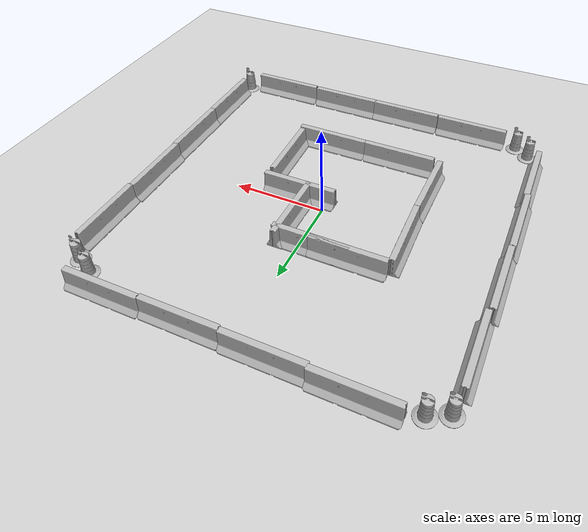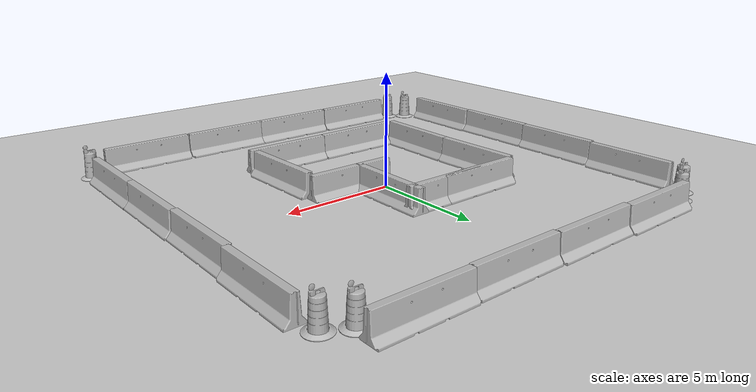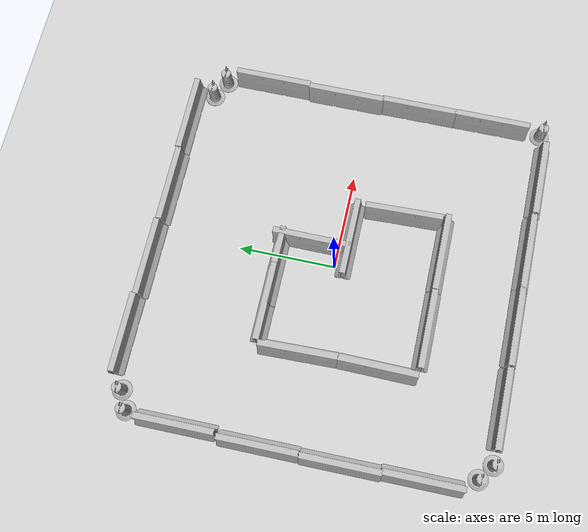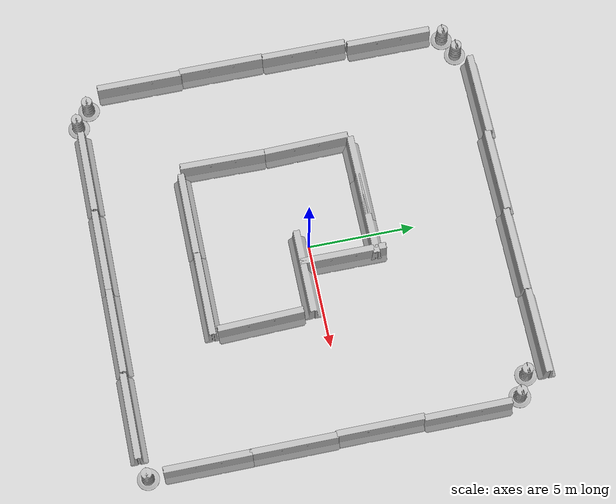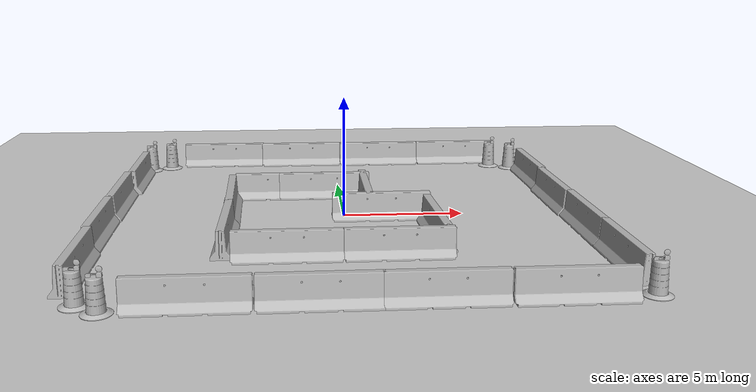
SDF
<sdf version="1.6">
 <world name="default">
  <light name="sun" type="directional">
   <pose>0 0 10 0 -0 0</pose>
   <diffuse>0.8 0.8 0.8 1</diffuse>
   <specular>0.2 0.2 0.2 1</specular>
   <attenuation>
    <range>1000</range>
    <constant>0.9</constant>
    <linear>0.01</linear>
    <quadratic>0.001</quadratic>
   </attenuation>
   <direction>-0.5 0.1 -0.9</direction>
  </light>
  <model name="ground_plane">
   <static>1</static>
   <link name="link">
    <collision name="collision">
     <geometry><plane><normal>0 0 1</normal><size>100 100</size></plane></geometry>
     <surface><friction><ode><mu>100</mu><mu2>50</mu2></ode></friction></surface>
    </collision>
    <visual name="visual">
     <cast_shadows>0</cast_shadows>
     <geometry><plane><normal>0 0 1</normal><size>100 100</size></plane></geometry>
     <material>
      <script><uri>file://media/materials/scripts/gazebo.material</uri><name>Gazebo/Grey</name></script>
     </material>
    </visual>
   </link>
  </model>
  <gravity>0 0 -9.8</gravity>
  <magnetic_field>6e-06 2.3e-05 -4.2e-05</magnetic_field>
  <atmosphere type="adiabatic"/>
  <physics name="default_physics" default="0" type="ode">
   <max_step_size>0.001</max_step_size>
   <real_time_factor>1</real_time_factor>
   <real_time_update_rate>1000</real_time_update_rate>
  </physics>
  <scene><ambient>0.4 0.4 0.4 1</ambient><background>0.7 0.7 0.7 1</background><shadows>1</shadows></scene>
  <spherical_coordinates>
   <surface_model>EARTH_WGS84</surface_model>
   <latitude_deg>0</latitude_deg>
   <longitude_deg>0</longitude_deg>
   <elevation>0</elevation>
   <heading_deg>0</heading_deg>
  </spherical_coordinates>
  <model name="jersey_barrier">
   <static>1</static>
   <link name="link">
    <visual name="visual">
     <geometry><mesh><uri>model://jersey_barrier/meshes/jersey_barrier.dae</uri></mesh></geometry>
    </visual>
    <collision name="upright">
     <pose>0 0 0.5715 0 -0 0</pose>
     <geometry><box><size>4.06542 0.3063 1.143</size></box></geometry>
    </collision>
   </link>
   <pose>-5.65677 9.4608 0 0 -0 0</pose>
  </model>
  <model name="jersey_barrier_clone">
   <static>1</static>
   <link name="link">
    <visual name="visual">
     <geometry><mesh><uri>model://jersey_barrier/meshes/jersey_barrier.dae</uri></mesh></geometry>
    </visual>
    <collision name="upright">
     <pose>0 0 0.5715 0 -0 0</pose>
     <geometry><box><size>4.06542 0.3063 1.143</size></box></geometry>
    </collision>
   </link>
   <pose>-1.65987 9.36075 0 0 -0 0</pose>
  </model>
  <model name="jersey_barrier_clone_0">
   <static>1</static>
   <link name="link">
    <visual name="visual">
     <geometry><mesh><uri>model://jersey_barrier/meshes/jersey_barrier.dae</uri></mesh></geometry>
    </visual>
    <collision name="upright">
     <pose>0 0 0.5715 0 -0 0</pose>
     <geometry><box><size>4.06542 0.3063 1.143</size></box></geometry>
    </collision>
   </link>
   <pose>2.39773 9.29085 0 0 -0 0</pose>
  </model>
  <model name="jersey_barrier_clone_1">
   <static>1</static>
   <link name="link">
    <visual name="visual">
     <geometry><mesh><uri>model://jersey_barrier/meshes/jersey_barrier.dae</uri></mesh></geometry>
    </visual>
    <collision name="upright">
     <pose>0 0 0.5715 0 -0 0</pose>
     <geometry><box><size>4.06542 0.3063 1.143</size></box></geometry>
    </collision>
   </link>
   <pose>6.45464 9.33993 0 0 -0 0</pose>
  </model>
  <model name="jersey_barrier_clone_3">
   <static>1</static>
   <link name="link">
    <visual name="visual">
     <geometry><mesh><uri>model://jersey_barrier/meshes/jersey_barrier.dae</uri></mesh></geometry>
    </visual>
    <collision name="upright">
     <pose>0 0 0.5715 0 -0 0</pose>
     <geometry><box><size>4.06542 0.3063 1.143</size></box></geometry>
    </collision>
   </link>
   <pose>9.44656 5.35522 0 0 0 -1.56865</pose>
  </model>
  <model name="jersey_barrier_clone_3_clone">
   <static>1</static>
   <link name="link">
    <visual name="visual">
     <geometry><mesh><uri>model://jersey_barrier/meshes/jersey_barrier.dae</uri></mesh></geometry>
    </visual>
    <collision name="upright">
     <pose>0 0 0.5715 0 -0 0</pose>
     <geometry><box><size>4.06542 0.3063 1.143</size></box></geometry>
    </collision>
   </link>
   <pose>9.3727 1.33119 0 0 0 -1.56865</pose>
  </model>
  <model name="jersey_barrier_clone_3_clone_0">
   <static>1</static>
   <link name="link">
    <visual name="visual">
     <geometry><mesh><uri>model://jersey_barrier/meshes/jersey_barrier.dae</uri></mesh></geometry>
    </visual>
    <collision name="upright">
     <pose>0 0 0.5715 0 -0 0</pose>
     <geometry><box><size>4.06542 0.3063 1.143</size></box></geometry>
    </collision>
   </link>
   <pose>9.4315 -2.6268 0 0 0 -1.56865</pose>
  </model>
  <model name="jersey_barrier_clone_3_clone_1">
   <static>1</static>
   <link name="link">
    <visual name="visual">
     <geometry><mesh><uri>model://jersey_barrier/meshes/jersey_barrier.dae</uri></mesh></geometry>
    </visual>
    <collision name="upright">
     <pose>0 0 0.5715 0 -0 0</pose>
     <geometry><box><size>4.06542 0.3063 1.143</size></box></geometry>
    </collision>
   </link>
   <pose>9.44969 -6.53485 0 0 0 -1.56865</pose>
  </model>
  <model name="jersey_barrier_clone_2_clone">
   <static>1</static>
   <link name="link">
    <visual name="visual">
     <geometry><mesh><uri>model://jersey_barrier/meshes/jersey_barrier.dae</uri></mesh></geometry>
    </visual>
    <collision name="upright">
     <pose>0 0 0.5715 0 -0 0</pose>
     <geometry><box><size>4.06542 0.3063 1.143</size></box></geometry>
    </collision>
   </link>
   <pose>6.70657 -9.54347 0 0 -0 0</pose>
  </model>
  <model name="jersey_barrier_clone_2_clone_0">
   <static>1</static>
   <link name="link">
    <visual name="visual">
     <geometry><mesh><uri>model://jersey_barrier/meshes/jersey_barrier.dae</uri></mesh></geometry>
    </visual>
    <collision name="upright">
     <pose>0 0 0.5715 0 -0 0</pose>
     <geometry><box><size>4.06542 0.3063 1.143</size></box></geometry>
    </collision>
   </link>
   <pose>2.59616 -9.50928 0 0 -0 0</pose>
  </model>
  <model name="jersey_barrier_clone_2_clone_1">
   <static>1</static>
   <link name="link">
    <visual name="visual">
     <geometry><mesh><uri>model://jersey_barrier/meshes/jersey_barrier.dae</uri></mesh></geometry>
    </visual>
    <collision name="upright">
     <pose>0 0 0.5715 0 -0 0</pose>
     <geometry><box><size>4.06542 0.3063 1.143</size></box></geometry>
    </collision>
   </link>
   <pose>-1.33414 -9.50852 0 0 -0 0</pose>
  </model>
  <model name="jersey_barrier_clone_2_clone_2">
   <static>1</static>
   <link name="link">
    <visual name="visual">
     <geometry><mesh><uri>model://jersey_barrier/meshes/jersey_barrier.dae</uri></mesh></geometry>
    </visual>
    <collision name="upright">
     <pose>0 0 0.5715 0 -0 0</pose>
     <geometry><box><size>4.06542 0.3063 1.143</size></box></geometry>
    </collision>
   </link>
   <pose>-5.44605 -9.49634 0 0 -0 0</pose>
  </model>
  <model name="jersey_barrier_clone_3_clone_1_clone">
   <static>1</static>
   <link name="link">
    <visual name="visual">
     <geometry><mesh><uri>model://jersey_barrier/meshes/jersey_barrier.dae</uri></mesh></geometry>
    </visual>
    <collision name="upright">
     <pose>0 0 0.5715 0 -0 0</pose>
     <geometry><box><size>4.06542 0.3063 1.143</size></box></geometry>
    </collision>
   </link>
   <pose>-9.54289 -6.33149 0 0 0 -1.56865</pose>
  </model>
  <model name="jersey_barrier_clone_3_clone_1_clone_0">
   <static>1</static>
   <link name="link">
    <visual name="visual">
     <geometry><mesh><uri>model://jersey_barrier/meshes/jersey_barrier.dae</uri></mesh></geometry>
    </visual>
    <collision name="upright">
     <pose>0 0 0.5715 0 -0 0</pose>
     <geometry><box><size>4.06542 0.3063 1.143</size></box></geometry>
    </collision>
   </link>
   <pose>-9.6221 -2.35336 0 0 0 -1.56865</pose>
  </model>
  <model name="jersey_barrier_clone_3_clone_1_clone_1">
   <static>1</static>
   <link name="link">
    <visual name="visual">
     <geometry><mesh><uri>model://jersey_barrier/meshes/jersey_barrier.dae</uri></mesh></geometry>
    </visual>
    <collision name="upright">
     <pose>0 0 0.5715 0 -0 0</pose>
     <geometry><box><size>4.06542 0.3063 1.143</size></box></geometry>
    </collision>
   </link>
   <pose>-9.58952 1.69745 0 0 0 -1.56865</pose>
  </model>
  <model name="jersey_barrier_clone_3_clone_1_clone_2">
   <static>1</static>
   <link name="link">
    <visual name="visual">
     <geometry><mesh><uri>model://jersey_barrier/meshes/jersey_barrier.dae</uri></mesh></geometry>
    </visual>
    <collision name="upright">
     <pose>0 0 0.5715 0 -0 0</pose>
     <geometry><box><size>4.06542 0.3063 1.143</size></box></geometry>
    </collision>
   </link>
   <pose>-9.44715 5.83721 0 0 0 -1.56865</pose>
  </model>
  <model name="Construction Barrel">
   <link name="link">
    <inertial>
     <pose>0 0 0.4 0 -0 0</pose>
     <mass>500</mass>
     <inertia><ixx>51.2096</ixx><iyy>51.2096</iyy><izz>25</izz><ixy>0</ixy><ixz>0</ixz><iyz>0</iyz></inertia>
    </inertial>
    <collision name="collision">
     <geometry><mesh><uri>model://construction_barrel/meshes/construction_barrel.dae</uri></mesh></geometry>
    </collision>
    <visual name="visual">
     <geometry><mesh><uri>model://construction_barrel/meshes/construction_barrel.dae</uri></mesh></geometry>
    </visual>
   </link>
   <pose>9.07439 7.91052 0 0 0 -5.5e-05</pose>
  </model>
  <model name="Construction Barrel_0">
   <link name="link">
    <inertial>
     <pose>0 0 0.4 0 -0 0</pose>
     <mass>500</mass>
     <inertia><ixx>51.2096</ixx><iyy>51.2096</iyy><izz>25</izz><ixy>0</ixy><ixz>0</ixz><iyz>0</iyz></inertia>
    </inertial>
    <collision name="collision">
     <geometry><mesh><uri>model://construction_barrel/meshes/construction_barrel.dae</uri></mesh></geometry>
    </collision>
    <visual name="visual">
     <geometry><mesh><uri>model://construction_barrel/meshes/construction_barrel.dae</uri></mesh></geometry>
    </visual>
   </link>
   <pose>8.12823 8.41633 0 0 0 -5.1e-05</pose>
  </model>
  <model name="Construction Barrel_1">
   <link name="link">
    <inertial>
     <pose>0 0 0.4 0 -0 0</pose>
     <mass>500</mass>
     <inertia><ixx>51.2096</ixx><iyy>51.2096</iyy><izz>25</izz><ixy>0</ixy><ixz>0</ixz><iyz>0</iyz></inertia>
    </inertial>
    <collision name="collision">
     <geometry><mesh><uri>model://construction_barrel/meshes/construction_barrel.dae</uri></mesh></geometry>
    </collision>
    <visual name="visual">
     <geometry><mesh><uri>model://construction_barrel/meshes/construction_barrel.dae</uri></mesh></geometry>
    </visual>
   </link>
   <pose>-9.27268 8.48387 0 0 0 -5e-05</pose>
  </model>
  <model name="Construction Barrel_2">
   <link name="link">
    <inertial>
     <pose>0 0 0.4 0 -0 0</pose>
     <mass>500</mass>
     <inertia><ixx>51.2096</ixx><iyy>51.2096</iyy><izz>25</izz><ixy>0</ixy><ixz>0</ixz><iyz>0</iyz></inertia>
    </inertial>
    <collision name="collision">
     <geometry><mesh><uri>model://construction_barrel/meshes/construction_barrel.dae</uri></mesh></geometry>
    </collision>
    <visual name="visual">
     <geometry><mesh><uri>model://construction_barrel/meshes/construction_barrel.dae</uri></mesh></geometry>
    </visual>
   </link>
   <pose>-8.34366 8.9385 -2e-06 1e-06 8e-06 -4.7e-05</pose>
  </model>
  <model name="Construction Barrel_3">
   <link name="link">
    <inertial>
     <pose>0 0 0.4 0 -0 0</pose>
     <mass>500</mass>
     <inertia><ixx>51.2096</ixx><iyy>51.2096</iyy><izz>25</izz><ixy>0</ixy><ixz>0</ixz><iyz>0</iyz></inertia>
    </inertial>
    <collision name="collision">
     <geometry><mesh><uri>model://construction_barrel/meshes/construction_barrel.dae</uri></mesh></geometry>
    </collision>
    <visual name="visual">
     <geometry><mesh><uri>model://construction_barrel/meshes/construction_barrel.dae</uri></mesh></geometry>
    </visual>
   </link>
   <pose>9.45358 -9.29435 -1e-06 4e-06 -2e-06 -5.4e-05</pose>
  </model>
  <model name="Construction Barrel_4">
   <link name="link">
    <inertial>
     <pose>0 0 0.4 0 -0 0</pose>
     <mass>500</mass>
     <inertia><ixx>51.2096</ixx><iyy>51.2096</iyy><izz>25</izz><ixy>0</ixy><ixz>0</ixz><iyz>0</iyz></inertia>
    </inertial>
    <collision name="collision">
     <geometry><mesh><uri>model://construction_barrel/meshes/construction_barrel.dae</uri></mesh></geometry>
    </collision>
    <visual name="visual">
     <geometry><mesh><uri>model://construction_barrel/meshes/construction_barrel.dae</uri></mesh></geometry>
    </visual>
   </link>
   <pose>-8.13321 -9.57177 -1e-06 -8e-06 -2e-06 -0.000505</pose>
  </model>
  <model name="Construction Barrel_5">
   <link name="link">
    <inertial>
     <pose>0 0 0.4 0 -0 0</pose>
     <mass>500</mass>
     <inertia><ixx>51.2096</ixx><iyy>51.2096</iyy><izz>25</izz><ixy>0</ixy><ixz>0</ixz><iyz>0</iyz></inertia>
    </inertial>
    <collision name="collision">
     <geometry><mesh><uri>model://construction_barrel/meshes/construction_barrel.dae</uri></mesh></geometry>
    </collision>
    <visual name="visual">
     <geometry><mesh><uri>model://construction_barrel/meshes/construction_barrel.dae</uri></mesh></geometry>
    </visual>
   </link>
   <pose>-8.93854 -8.96011 -0 0 0 -0.000402</pose>
  </model>
  <model name="jersey_barrier_0">
   <static>1</static>
   <link name="link">
    <visual name="visual">
     <geometry><mesh><uri>model://jersey_barrier/meshes/jersey_barrier.dae</uri></mesh></geometry>
    </visual>
    <collision name="upright">
     <pose>0 0 0.5715 0 -0 0</pose>
     <geometry><box><size>4.06542 0.3063 1.143</size></box></geometry>
    </collision>
   </link>
   <pose>-4.75193 0.827694 0 0 0 -1.54488</pose>
  </model>
  <model name="jersey_barrier_0_clone">
   <static>1</static>
   <link name="link">
    <visual name="visual">
     <geometry><mesh><uri>model://jersey_barrier/meshes/jersey_barrier.dae</uri></mesh></geometry>
    </visual>
    <collision name="upright">
     <pose>0 0 0.5715 0 -0 0</pose>
     <geometry><box><size>4.06542 0.3063 1.143</size></box></geometry>
    </collision>
   </link>
   <pose>-2.66021 2.94299 0 0 -0 0</pose>
  </model>
  <model name="jersey_barrier_0_clone_0">
   <static>1</static>
   <link name="link">
    <visual name="visual">
     <geometry><mesh><uri>model://jersey_barrier/meshes/jersey_barrier.dae</uri></mesh></geometry>
    </visual>
    <collision name="upright">
     <pose>0 0 0.5715 0 -0 0</pose>
     <geometry><box><size>4.06542 0.3063 1.143</size></box></geometry>
    </collision>
   </link>
   <pose>3.40005 -2.95093 0 0 0 -1.5374</pose>
  </model>
  <model name="jersey_barrier_0_clone_1">
   <static>1</static>
   <link name="link">
    <visual name="visual">
     <geometry><mesh><uri>model://jersey_barrier/meshes/jersey_barrier.dae</uri></mesh></geometry>
    </visual>
    <collision name="upright">
     <pose>0 0 0.5715 0 -0 0</pose>
     <geometry><box><size>4.06542 0.3063 1.143</size></box></geometry>
    </collision>
   </link>
   <pose>1.67017 -5.22309 0 0 -0 0</pose>
  </model>
  <model name="jersey_barrier_0_clone_1_clone">
   <static>1</static>
   <link name="link">
    <visual name="visual">
     <geometry><mesh><uri>model://jersey_barrier/meshes/jersey_barrier.dae</uri></mesh></geometry>
    </visual>
    <collision name="upright">
     <pose>0 0 0.5715 0 -0 0</pose>
     <geometry><box><size>4.06542 0.3063 1.143</size></box></geometry>
    </collision>
   </link>
   <pose>-2.36998 -5.23455 0 0 -0 0</pose>
  </model>
  <model name="jersey_barrier_0_clone_1_clone_clone">
   <static>1</static>
   <link name="link">
    <visual name="visual">
     <geometry><mesh><uri>model://jersey_barrier/meshes/jersey_barrier.dae</uri></mesh></geometry>
    </visual>
    <collision name="upright">
     <pose>0 0 0.5715 0 -0 0</pose>
     <geometry><box><size>4.06542 0.3063 1.143</size></box></geometry>
    </collision>
   </link>
   <pose>-4.72285 -3.18685 0 0 0 -1.58136</pose>
  </model>
  <model name="jersey_barrier_0_clone_clone">
   <static>1</static>
   <link name="link">
    <visual name="visual">
     <geometry><mesh><uri>model://jersey_barrier/meshes/jersey_barrier.dae</uri></mesh></geometry>
    </visual>
    <collision name="upright">
     <pose>0 0 0.5715 0 -0 0</pose>
     <geometry><box><size>4.06542 0.3063 1.143</size></box></geometry>
    </collision>
   </link>
   <pose>-0.725913 2.93614 0 0 -0 0</pose>
  </model>
  <model name="jersey_barrier_0_clone_clone_clone">
   <static>1</static>
   <link name="link">
    <visual name="visual">
     <geometry><mesh><uri>model://jersey_barrier/meshes/jersey_barrier.dae</uri></mesh></geometry>
    </visual>
    <collision name="upright">
     <pose>0 0 0.5715 0 -0 0</pose>
     <geometry><box><size>4.06542 0.3063 1.143</size></box></geometry>
    </collision>
   </link>
   <pose>1.50591 -0.501406 0 0 -0 0</pose>
  </model>
  <model name="jersey_barrier_0_enclosing">
   <static>1</static>
   <link name="link">
    <visual name="visual">
     <geometry><mesh><uri>model://jersey_barrier/meshes/jersey_barrier.dae</uri></mesh></geometry>
    </visual>
    <collision name="upright">
     <pose>0 0 0.5715 0 -0 0</pose>
     <geometry><box><size>4.06542 0.3063 1.143</size></box></geometry>
    </collision>
   </link>
   <pose>1.02587 1.4 0 0 -0 1.57</pose>
  </model>
  <plugin name="gazebo_ros" filename="libgazebo_ros_state.so"><ros><namespace>/gazebo</namespace></ros></plugin>
 </world>
</sdf>
